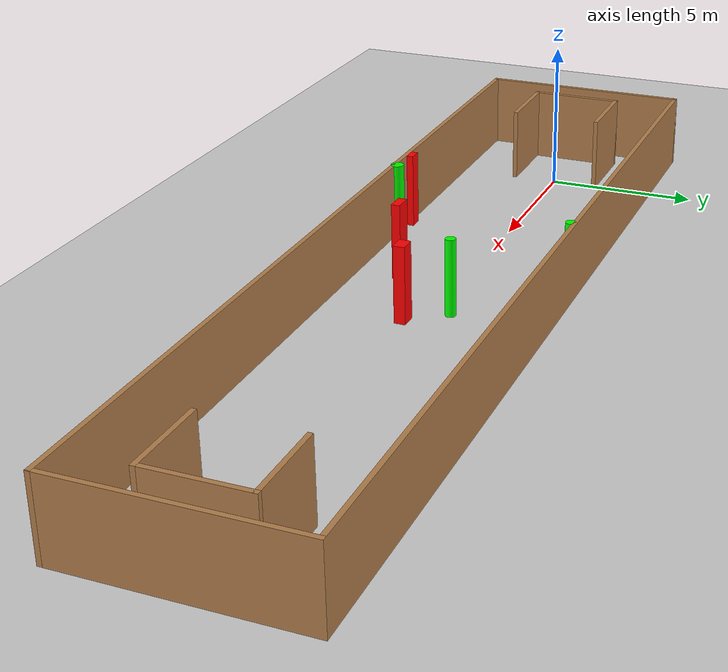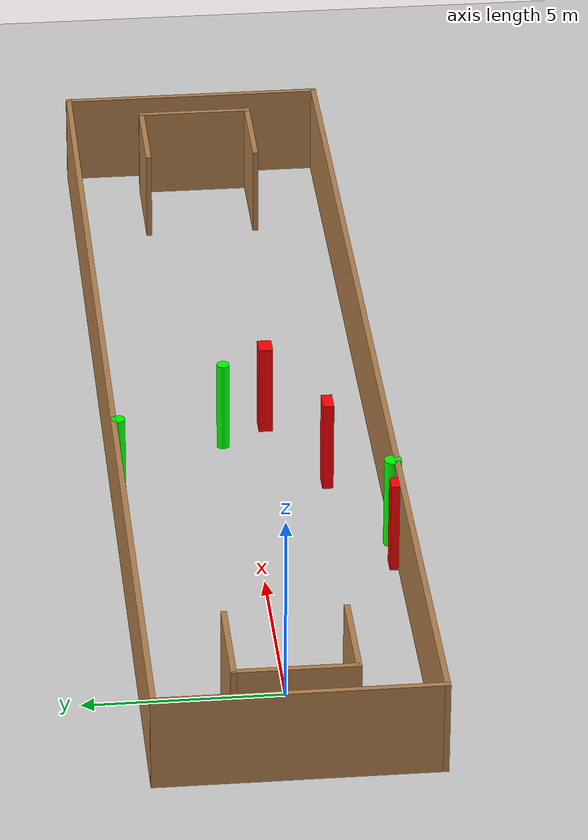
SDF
<sdf version="1.7">
 <world name="default">
  <light name="sun" type="directional">
   <pose>0 0 10 0 -0 0</pose>
   <diffuse>0.8 0.8 0.8 1</diffuse>
   <specular>0.2 0.2 0.2 1</specular>
   <attenuation>
    <range>1000</range>
    <constant>0.9</constant>
    <linear>0.01</linear>
    <quadratic>0.001</quadratic>
   </attenuation>
   <direction>-0.5 0.1 -0.9</direction>
   <spot><inner_angle>0</inner_angle><outer_angle>0</outer_angle><falloff>0</falloff></spot>
  </light>
  <model name="ground_plane">
   <static>1</static>
   <link name="link">
    <collision name="collision">
     <geometry><plane><normal>0 0 1</normal><size>100 100</size></plane></geometry>
     <surface>
      <contact><collide_bitmask>65535</collide_bitmask></contact>
      <friction><ode><mu>100</mu><mu2>50</mu2></ode></friction>
     </surface>
    </collision>
    <visual name="visual">
     <cast_shadows>0</cast_shadows>
     <geometry><plane><normal>0 0 1</normal><size>100 100</size></plane></geometry>
     <material>
      <script><uri>file://media/materials/scripts/gazebo.material</uri><name>Gazebo/Grey</name></script>
     </material>
    </visual>
   </link>
  </model>
  <gravity>0 0 -9.8</gravity>
  <magnetic_field>6e-06 2.3e-05 -4.2e-05</magnetic_field>
  <atmosphere type="adiabatic"/>
  <physics type="ode">
   <max_step_size>0.001</max_step_size>
   <real_time_factor>1</real_time_factor>
   <real_time_update_rate>1000</real_time_update_rate>
  </physics>
  <scene><ambient>0.4 0.4 0.4 1</ambient><background>0.7 0.7 0.7 1</background><shadows>1</shadows></scene>
  <spherical_coordinates>
   <surface_model>EARTH_WGS84</surface_model>
   <latitude_deg>0</latitude_deg>
   <longitude_deg>0</longitude_deg>
   <elevation>0</elevation>
   <heading_deg>0</heading_deg>
  </spherical_coordinates>
  <model name="my_base_walls">
   <link name="Wall_0">
    <collision name="Wall_0_Collision">
     <geometry><box><size>7.15 0.15 2.5</size></box></geometry>
     <pose>0 0 1.25 0 -0 0</pose>
    </collision>
    <visual name="Wall_0_Visual">
     <pose>0 0 1.25 0 -0 0</pose>
     <geometry><box><size>7.15 0.15 2.5</size></box></geometry>
     <material>
      <script><uri>file://media/materials/scripts/gazebo.material</uri><name>Gazebo/Wood</name></script>
      <ambient>1 1 1 1</ambient>
     </material>
     <meta><layer>0</layer></meta>
    </visual>
    <pose>-15 0 0 0 -0 1.5708</pose>
   </link>
   <link name="Wall_10">
    <collision name="Wall_10_Collision">
     <geometry><box><size>2.65 0.15 2.5</size></box></geometry>
     <pose>0 0 1.25 0 -0 0</pose>
    </collision>
    <visual name="Wall_10_Visual">
     <pose>0 0 1.25 0 -0 0</pose>
     <geometry><box><size>2.65 0.15 2.5</size></box></geometry>
     <material>
      <script><uri>file://media/materials/scripts/gazebo.material</uri><name>Gazebo/Wood</name></script>
      <ambient>1 1 1 1</ambient>
     </material>
     <meta><layer>0</layer></meta>
    </visual>
    <pose>-12.75 -1.5 0 0 -0 0</pose>
   </link>
   <link name="Wall_12">
    <collision name="Wall_12_Collision">
     <geometry><box><size>2.65 0.15 2.5</size></box></geometry>
     <pose>0 0 1.25 0 -0 0</pose>
    </collision>
    <visual name="Wall_12_Visual">
     <pose>0 0 1.25 0 -0 0</pose>
     <geometry><box><size>2.65 0.15 2.5</size></box></geometry>
     <material>
      <script><uri>file://media/materials/scripts/gazebo.material</uri><name>Gazebo/Wood</name></script>
      <ambient>1 1 1 1</ambient>
     </material>
     <meta><layer>0</layer></meta>
    </visual>
    <pose>-12.75 1.5 0 0 -0 0</pose>
   </link>
   <link name="Wall_14">
    <collision name="Wall_14_Collision">
     <geometry><box><size>3.15 0.15 2.5</size></box></geometry>
     <pose>0 0 1.25 0 -0 0</pose>
    </collision>
    <visual name="Wall_14_Visual">
     <pose>0 0 1.25 0 -0 0</pose>
     <geometry><box><size>3.15 0.15 2.5</size></box></geometry>
     <material>
      <script><uri>file://media/materials/scripts/gazebo.material</uri><name>Gazebo/Wood</name></script>
      <ambient>1 1 1 1</ambient>
     </material>
     <meta><layer>0</layer></meta>
    </visual>
    <pose>14 0 0 0 -0 -1.5708</pose>
   </link>
   <link name="Wall_15">
    <collision name="Wall_15_Collision">
     <geometry><box><size>2.65 0.15 2.5</size></box></geometry>
     <pose>0 0 1.25 0 -0 0</pose>
    </collision>
    <visual name="Wall_15_Visual">
     <pose>0 0 1.25 0 -0 0</pose>
     <geometry><box><size>2.65 0.15 2.5</size></box></geometry>
     <material>
      <script><uri>file://media/materials/scripts/gazebo.material</uri><name>Gazebo/Wood</name></script>
      <ambient>1 1 1 1</ambient>
     </material>
     <meta><layer>0</layer></meta>
    </visual>
    <pose>12.75 -1.5 0 0 -0 3.14159</pose>
   </link>
   <link name="Wall_17">
    <collision name="Wall_17_Collision">
     <geometry><box><size>2.65 0.15 2.5</size></box></geometry>
     <pose>0 0 1.25 0 -0 0</pose>
    </collision>
    <visual name="Wall_17_Visual">
     <pose>0 0 1.25 0 -0 0</pose>
     <geometry><box><size>2.65 0.15 2.5</size></box></geometry>
     <material>
      <script><uri>file://media/materials/scripts/gazebo.material</uri><name>Gazebo/Wood</name></script>
      <ambient>1 1 1 1</ambient>
     </material>
     <meta><layer>0</layer></meta>
    </visual>
    <pose>12.75 1.5 0 0 -0 3.14159</pose>
   </link>
   <link name="Wall_2">
    <collision name="Wall_2_Collision">
     <geometry><box><size>30.15 0.15 2.5</size></box></geometry>
     <pose>0 0 1.25 0 -0 0</pose>
    </collision>
    <visual name="Wall_2_Visual">
     <pose>0 0 1.25 0 -0 0</pose>
     <geometry><box><size>30.15 0.15 2.5</size></box></geometry>
     <material>
      <script><uri>file://media/materials/scripts/gazebo.material</uri><name>Gazebo/Wood</name></script>
      <ambient>1 1 1 1</ambient>
     </material>
     <meta><layer>0</layer></meta>
    </visual>
    <pose>-0 -3.5 0 0 -0 0</pose>
   </link>
   <link name="Wall_4">
    <collision name="Wall_4_Collision">
     <geometry><box><size>30.15 0.15 2.5</size></box></geometry>
     <pose>0 0 1.25 0 -0 0</pose>
    </collision>
    <visual name="Wall_4_Visual">
     <pose>0 0 1.25 0 -0 0</pose>
     <geometry><box><size>30.15 0.15 2.5</size></box></geometry>
     <material>
      <script><uri>file://media/materials/scripts/gazebo.material</uri><name>Gazebo/Wood</name></script>
      <ambient>1 1 1 1</ambient>
     </material>
     <meta><layer>0</layer></meta>
    </visual>
    <pose>-0 3.5 0 0 -0 0</pose>
   </link>
   <link name="Wall_6">
    <collision name="Wall_6_Collision">
     <geometry><box><size>7.15 0.15 2.5</size></box></geometry>
     <pose>0 0 1.25 0 -0 0</pose>
    </collision>
    <visual name="Wall_6_Visual">
     <pose>0 0 1.25 0 -0 0</pose>
     <geometry><box><size>7.15 0.15 2.5</size></box></geometry>
     <material>
      <script><uri>file://media/materials/scripts/gazebo.material</uri><name>Gazebo/Wood</name></script>
      <ambient>1 1 1 1</ambient>
     </material>
     <meta><layer>0</layer></meta>
    </visual>
    <pose>15 0 0 0 -0 -1.5708</pose>
   </link>
   <link name="Wall_9">
    <collision name="Wall_9_Collision">
     <geometry><box><size>3.15 0.15 2.5</size></box></geometry>
     <pose>0 0 1.25 0 -0 0</pose>
    </collision>
    <visual name="Wall_9_Visual">
     <pose>0 0 1.25 0 -0 0</pose>
     <geometry><box><size>3.15 0.15 2.5</size></box></geometry>
     <material>
      <script><uri>file://media/materials/scripts/gazebo.material</uri><name>Gazebo/Wood</name></script>
      <ambient>1 1 1 1</ambient>
     </material>
     <meta><layer>0</layer></meta>
    </visual>
    <pose>-14 0 0 0 -0 -1.5708</pose>
   </link>
   <static>1</static>
   <pose>11.5 0 0 0 -0 0</pose>
  </model>
  <model name="cylinder1">
   <static>1</static>
   <link name="link">
    <inertial>
     <mass>1</mass>
     <inertia><ixx>0.5</ixx><ixy>0</ixy><ixz>0</ixz><iyy>0.5</iyy><iyz>0</iyz><izz>1</izz></inertia>
    </inertial>
    <collision name="collision">
     <geometry><cylinder><radius>0.21895394901965093</radius><length>2.5</length></cylinder></geometry>
    </collision>
    <visual name="visual">
     <geometry><cylinder><radius>0.21895394901965093</radius><length>2.5</length></cylinder></geometry>
     <material>
      <ambient>0 1 0 1</ambient>
      <diffuse>0 1 0 1</diffuse>
      <specular>0.1 0.1 0.1 1</specular>
      <emissive>0 0 0 0</emissive>
     </material>
    </visual>
   </link>
   <pose>6.526792221980802 -3.4013618604237648 1.25 0 0 0</pose>
  </model>
  <model name="cylinder2">
   <static>1</static>
   <link name="link">
    <inertial>
     <mass>1</mass>
     <inertia><ixx>0.5</ixx><ixy>0</ixy><ixz>0</ixz><iyy>0.5</iyy><iyz>0</iyz><izz>1</izz></inertia>
    </inertial>
    <collision name="collision">
     <geometry><cylinder><radius>0.1686515427283811</radius><length>2.5</length></cylinder></geometry>
    </collision>
    <visual name="visual">
     <geometry><cylinder><radius>0.1686515427283811</radius><length>2.5</length></cylinder></geometry>
     <material>
      <ambient>0 1 0 1</ambient>
      <diffuse>0 1 0 1</diffuse>
      <specular>0.1 0.1 0.1 1</specular>
      <emissive>0 0 0 0</emissive>
     </material>
    </visual>
   </link>
   <pose>11.585301099471135 0.4529495786338851 1.25 0 0 0</pose>
  </model>
  <model name="cylinder3">
   <static>1</static>
   <link name="link">
    <inertial>
     <mass>1</mass>
     <inertia><ixx>0.5</ixx><ixy>0</ixy><ixz>0</ixz><iyy>0.5</iyy><iyz>0</iyz><izz>1</izz></inertia>
    </inertial>
    <collision name="collision">
     <geometry><cylinder><radius>0.1733235713472406</radius><length>2.5</length></cylinder></geometry>
    </collision>
    <visual name="visual">
     <geometry><cylinder><radius>0.1733235713472406</radius><length>2.5</length></cylinder></geometry>
     <material>
      <ambient>0 1 0 1</ambient>
      <diffuse>0 1 0 1</diffuse>
      <specular>0.1 0.1 0.1 1</specular>
      <emissive>0 0 0 0</emissive>
     </material>
    </visual>
   </link>
   <pose>9.141283205679237 3.3747680582018784 1.25 0 0 0</pose>
  </model>
  <model name="box1">
   <static>1</static>
   <link name="link">
    <inertial>
     <mass>1</mass>
     <inertia><ixx>0.083</ixx><ixy>0</ixy><ixz>0</ixz><iyy>0.083</iyy><iyz>0</iyz><izz>0.083</izz></inertia>
    </inertial>
    <collision name="collision">
     <geometry><box><size>0.5046658365561665 0.3653690835940527 2.5</size></box></geometry>
    </collision>
    <visual name="visual">
     <geometry><box><size>0.5046658365561665 0.3653690835940527 2.5</size></box></geometry>
     <material>
      <ambient>1 0 0 1</ambient>
      <diffuse>1 0 0 1</diffuse>
      <specular>0.1 0.1 0.1 1</specular>
      <emissive>0 0 0 0</emissive>
     </material>
    </visual>
    <sensor name="my_contact" type="contact">
     <contact><collision>box_collision</collision><topic>__default_topic__</topic></contact>
    </sensor>
   </link>
   <pose>12.434024945699447 -0.731129553890796 1.25 0 0 0</pose>
  </model>
  <model name="box2">
   <static>1</static>
   <link name="link">
    <inertial>
     <mass>1</mass>
     <inertia><ixx>0.083</ixx><ixy>0</ixy><ixz>0</ixz><iyy>0.083</iyy><iyz>0</iyz><izz>0.083</izz></inertia>
    </inertial>
    <collision name="collision">
     <geometry><box><size>0.43317093147965247 0.22331033097047548 2.5</size></box></geometry>
    </collision>
    <visual name="visual">
     <geometry><box><size>0.43317093147965247 0.22331033097047548 2.5</size></box></geometry>
     <material>
      <ambient>1 0 0 1</ambient>
      <diffuse>1 0 0 1</diffuse>
      <specular>0.1 0.1 0.1 1</specular>
      <emissive>0 0 0 0</emissive>
     </material>
    </visual>
    <sensor name="my_contact" type="contact">
     <contact><collision>box_collision</collision><topic>__default_topic__</topic></contact>
    </sensor>
   </link>
   <pose>5.456024371506018 -3.316965080565473 1.25 0 0 0</pose>
  </model>
  <model name="box3">
   <static>1</static>
   <link name="link">
    <inertial>
     <mass>1</mass>
     <inertia><ixx>0.083</ixx><ixy>0</ixy><ixz>0</ixz><iyy>0.083</iyy><iyz>0</iyz><izz>0.083</izz></inertia>
    </inertial>
    <collision name="collision">
     <geometry><box><size>0.5839326336038568 0.2843354385056966 2.5</size></box></geometry>
    </collision>
    <visual name="visual">
     <geometry><box><size>0.5839326336038568 0.2843354385056966 2.5</size></box></geometry>
     <material>
      <ambient>1 0 0 1</ambient>
      <diffuse>1 0 0 1</diffuse>
      <specular>0.1 0.1 0.1 1</specular>
      <emissive>0 0 0 0</emissive>
     </material>
    </visual>
    <sensor name="my_contact" type="contact">
     <contact><collision>box_collision</collision><topic>__default_topic__</topic></contact>
    </sensor>
   </link>
   <pose>9.519601908637485 -2.0607096126984787 1.25 0 0 0</pose>
  </model>
 </world>
</sdf>
